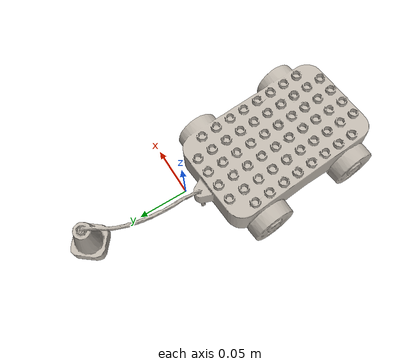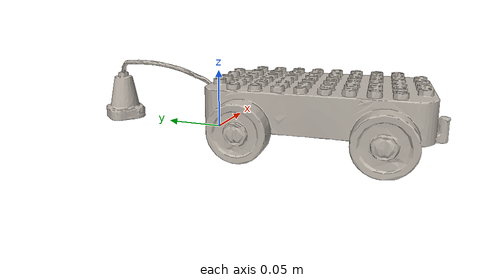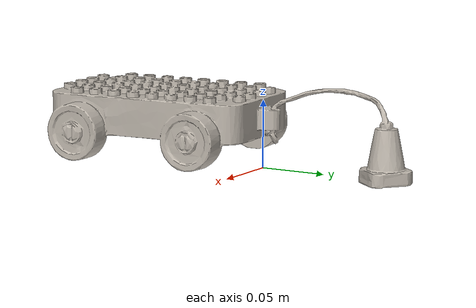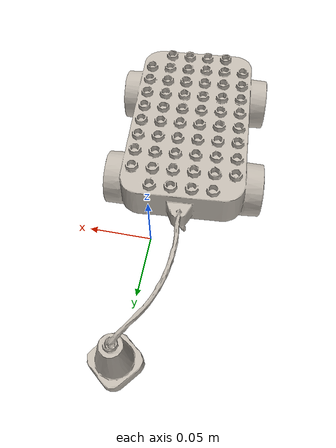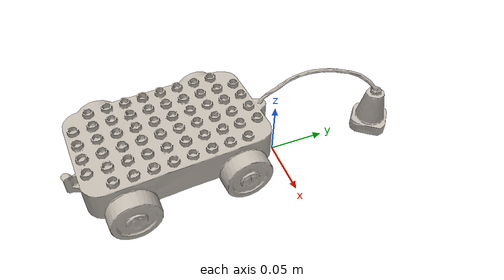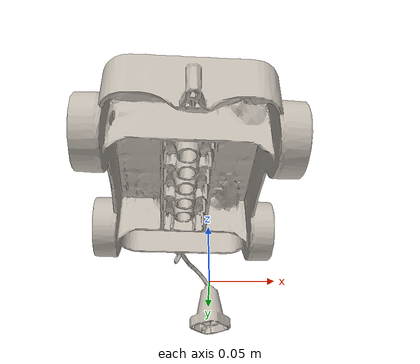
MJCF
<mujoco model="lego_g">
  <compiler angle="radian" meshdir="assets" texturedir="assets"/>
    <default>
        <default class="ycb_col">
            <geom contype="1" class="ycb_col" conaffinity="1" group="3" rgba=".4 .5 .6 1"/>
        </default>
        <default class="ycb_viz">
            <geom contype="0" class="ycb_col" conaffinity="0" type="mesh" mass="0"/>
        </default>
    </default>
  <asset>
    <texture type="2d" name="g_lego_duplo_tex" file="texture_map.png"/>
    <material name="g_lego_duplo_mat" texture="g_lego_duplo_tex" specular="0.5" shininess="0.5"/>
    <mesh file="textured.obj" name="g_lego_duplo"/>
    <mesh file="textured_collision_0.obj" name="g_lego_duplo_collision_0"/>
    <mesh file="textured_collision_1.obj" name="g_lego_duplo_collision_1"/>
    <mesh file="textured_collision_2.obj" name="g_lego_duplo_collision_2"/>
    <mesh file="textured_collision_3.obj" name="g_lego_duplo_collision_3"/>
    <mesh file="textured_collision_4.obj" name="g_lego_duplo_collision_4"/>
    <mesh file="textured_collision_5.obj" name="g_lego_duplo_collision_5"/>
    <mesh file="textured_collision_6.obj" name="g_lego_duplo_collision_6"/>
    <mesh file="textured_collision_7.obj" name="g_lego_duplo_collision_7"/>
    <mesh file="textured_collision_8.obj" name="g_lego_duplo_collision_8"/>
    <mesh file="textured_collision_9.obj" name="g_lego_duplo_collision_9"/>
    <mesh file="textured_collision_10.obj" name="g_lego_duplo_collision_10"/>
    <mesh file="textured_collision_11.obj" name="g_lego_duplo_collision_11"/>
    <mesh file="textured_collision_12.obj" name="g_lego_duplo_collision_12"/>
    <mesh file="textured_collision_13.obj" name="g_lego_duplo_collision_13"/>
    <mesh file="textured_collision_14.obj" name="g_lego_duplo_collision_14"/>
    <mesh file="textured_collision_15.obj" name="g_lego_duplo_collision_15"/>
    <mesh file="textured_collision_16.obj" name="g_lego_duplo_collision_16"/>
    <mesh file="textured_collision_17.obj" name="g_lego_duplo_collision_17"/>
    <mesh file="textured_collision_18.obj" name="g_lego_duplo_collision_18"/>
    <mesh file="textured_collision_19.obj" name="g_lego_duplo_collision_19"/>
    <mesh file="textured_collision_20.obj" name="g_lego_duplo_collision_20"/>
    <mesh file="textured_collision_21.obj" name="g_lego_duplo_collision_21"/>
    <mesh file="textured_collision_22.obj" name="g_lego_duplo_collision_22"/>
    <mesh file="textured_collision_23.obj" name="g_lego_duplo_collision_23"/>
    <mesh file="textured_collision_24.obj" name="g_lego_duplo_collision_24"/>
    <mesh file="textured_collision_25.obj" name="g_lego_duplo_collision_25"/>
    <mesh file="textured_collision_26.obj" name="g_lego_duplo_collision_26"/>
    <mesh file="textured_collision_27.obj" name="g_lego_duplo_collision_27"/>
    <mesh file="textured_collision_28.obj" name="g_lego_duplo_collision_28"/>
    <mesh file="textured_collision_29.obj" name="g_lego_duplo_collision_29"/>
    <mesh file="textured_collision_30.obj" name="g_lego_duplo_collision_30"/>
    <mesh file="textured_collision_31.obj" name="g_lego_duplo_collision_31"/>
    <mesh file="textured_collision_32.obj" name="g_lego_duplo_collision_32"/>
    <mesh file="textured_collision_33.obj" name="g_lego_duplo_collision_33"/>
    <mesh file="textured_collision_34.obj" name="g_lego_duplo_collision_34"/>
    <mesh file="textured_collision_35.obj" name="g_lego_duplo_collision_35"/>
    <mesh file="textured_collision_36.obj" name="g_lego_duplo_collision_36"/>
    <mesh file="textured_collision_37.obj" name="g_lego_duplo_collision_37"/>
    <mesh file="textured_collision_38.obj" name="g_lego_duplo_collision_38"/>
    <mesh file="textured_collision_39.obj" name="g_lego_duplo_collision_39"/>
    <mesh file="textured_collision_40.obj" name="g_lego_duplo_collision_40"/>
    <mesh file="textured_collision_41.obj" name="g_lego_duplo_collision_41"/>
    <mesh file="textured_collision_42.obj" name="g_lego_duplo_collision_42"/>
    <mesh file="textured_collision_43.obj" name="g_lego_duplo_collision_43"/>
    <mesh file="textured_collision_44.obj" name="g_lego_duplo_collision_44"/>
    <mesh file="textured_collision_45.obj" name="g_lego_duplo_collision_45"/>
    <mesh file="textured_collision_46.obj" name="g_lego_duplo_collision_46"/>
    <mesh file="textured_collision_47.obj" name="g_lego_duplo_collision_47"/>
    <mesh file="textured_collision_48.obj" name="g_lego_duplo_collision_48"/>
    <mesh file="textured_collision_49.obj" name="g_lego_duplo_collision_49"/>
    <mesh file="textured_collision_50.obj" name="g_lego_duplo_collision_50"/>
    <mesh file="textured_collision_51.obj" name="g_lego_duplo_collision_51"/>
    <mesh file="textured_collision_52.obj" name="g_lego_duplo_collision_52"/>
    <mesh file="textured_collision_53.obj" name="g_lego_duplo_collision_53"/>
    <mesh file="textured_collision_54.obj" name="g_lego_duplo_collision_54"/>
    <mesh file="textured_collision_55.obj" name="g_lego_duplo_collision_55"/>
    <mesh file="textured_collision_56.obj" name="g_lego_duplo_collision_56"/>
    <mesh file="textured_collision_57.obj" name="g_lego_duplo_collision_57"/>
    <mesh file="textured_collision_58.obj" name="g_lego_duplo_collision_58"/>
    <mesh file="textured_collision_59.obj" name="g_lego_duplo_collision_59"/>
    <mesh file="textured_collision_60.obj" name="g_lego_duplo_collision_60"/>
    <mesh file="textured_collision_61.obj" name="g_lego_duplo_collision_61"/>
    <mesh file="textured_collision_62.obj" name="g_lego_duplo_collision_62"/>
    <mesh file="textured_collision_63.obj" name="g_lego_duplo_collision_63"/>
    <mesh file="textured_collision_64.obj" name="g_lego_duplo_collision_64"/>
    <mesh file="textured_collision_65.obj" name="g_lego_duplo_collision_65"/>
    <mesh file="textured_collision_66.obj" name="g_lego_duplo_collision_66"/>
    <mesh file="textured_collision_67.obj" name="g_lego_duplo_collision_67"/>
    <mesh file="textured_collision_68.obj" name="g_lego_duplo_collision_68"/>
    <mesh file="textured_collision_69.obj" name="g_lego_duplo_collision_69"/>
    <mesh file="textured_collision_70.obj" name="g_lego_duplo_collision_70"/>
    <mesh file="textured_collision_71.obj" name="g_lego_duplo_collision_71"/>
  </asset>
  <worldbody>
      <geom material="g_lego_duplo_mat" mesh="g_lego_duplo" class="ycb_viz"/>
      <geom mesh="g_lego_duplo_collision_0" class="ycb_col" conaffinity="1" condim="4" friction="0.1 0.1 0.1" mass="0.00521833750742012" rgba="1 1 1 1" solimp="0.99 0.99 0.01" solref=".001 0.1" type="mesh" group="3"/>
      <geom mesh="g_lego_duplo_collision_1" class="ycb_col" conaffinity="1" condim="4" friction="0.1 0.1 0.1" mass="0.0009375352006990919" rgba="1 1 1 1" solimp="0.99 0.99 0.01" solref=".001 0.1" type="mesh" group="3"/>
      <geom mesh="g_lego_duplo_collision_2" class="ycb_col" conaffinity="1" condim="4" friction="0.1 0.1 0.1" mass="0.000699405197976756" rgba="1 1 1 1" solimp="0.99 0.99 0.01" solref=".001 0.1" type="mesh" group="3"/>
      <geom mesh="g_lego_duplo_collision_3" class="ycb_col" conaffinity="1" condim="4" friction="0.1 0.1 0.1" mass="0.008243552164779008" rgba="1 1 1 1" solimp="0.99 0.99 0.01" solref=".001 0.1" type="mesh" group="3"/>
      <geom mesh="g_lego_duplo_collision_4" class="ycb_col" conaffinity="1" condim="4" friction="0.1 0.1 0.1" mass="0.0018540393711391945" rgba="1 1 1 1" solimp="0.99 0.99 0.01" solref=".001 0.1" type="mesh" group="3"/>
      <geom mesh="g_lego_duplo_collision_5" class="ycb_col" conaffinity="1" condim="4" friction="0.1 0.1 0.1" mass="0.0009685457086253561" rgba="1 1 1 1" solimp="0.99 0.99 0.01" solref=".001 0.1" type="mesh" group="3"/>
      <geom mesh="g_lego_duplo_collision_6" class="ycb_col" conaffinity="1" condim="4" friction="0.1 0.1 0.1" mass="0.007282872195301293" rgba="1 1 1 1" solimp="0.99 0.99 0.01" solref=".001 0.1" type="mesh" group="3"/>
      <geom mesh="g_lego_duplo_collision_7" class="ycb_col" conaffinity="1" condim="4" friction="0.1 0.1 0.1" mass="0.0007851507888515668" rgba="1 1 1 1" solimp="0.99 0.99 0.01" solref=".001 0.1" type="mesh" group="3"/>
      <geom mesh="g_lego_duplo_collision_8" class="ycb_col" conaffinity="1" condim="4" friction="0.1 0.1 0.1" mass="0.0006862619147950573" rgba="1 1 1 1" solimp="0.99 0.99 0.01" solref=".001 0.1" type="mesh" group="3"/>
      <geom mesh="g_lego_duplo_collision_9" class="ycb_col" conaffinity="1" condim="4" friction="0.1 0.1 0.1" mass="0.0005360587774640224" rgba="1 1 1 1" solimp="0.99 0.99 0.01" solref=".001 0.1" type="mesh" group="3"/>
      <geom mesh="g_lego_duplo_collision_10" class="ycb_col" conaffinity="1" condim="4" friction="0.1 0.1 0.1" mass="0.004555390287208251" rgba="1 1 1 1" solimp="0.99 0.99 0.01" solref=".001 0.1" type="mesh" group="3"/>
      <geom mesh="g_lego_duplo_collision_11" class="ycb_col" conaffinity="1" condim="4" friction="0.1 0.1 0.1" mass="0.00270186799365822" rgba="1 1 1 1" solimp="0.99 0.99 0.01" solref=".001 0.1" type="mesh" group="3"/>
      <geom mesh="g_lego_duplo_collision_12" class="ycb_col" conaffinity="1" condim="4" friction="0.1 0.1 0.1" mass="0.0018539626974991908" rgba="1 1 1 1" solimp="0.99 0.99 0.01" solref=".001 0.1" type="mesh" group="3"/>
      <geom mesh="g_lego_duplo_collision_13" class="ycb_col" conaffinity="1" condim="4" friction="0.1 0.1 0.1" mass="0.0016028530091798203" rgba="1 1 1 1" solimp="0.99 0.99 0.01" solref=".001 0.1" type="mesh" group="3"/>
      <geom mesh="g_lego_duplo_collision_14" class="ycb_col" conaffinity="1" condim="4" friction="0.1 0.1 0.1" mass="0.008157516131139596" rgba="1 1 1 1" solimp="0.99 0.99 0.01" solref=".001 0.1" type="mesh" group="3"/>
      <geom mesh="g_lego_duplo_collision_15" class="ycb_col" conaffinity="1" condim="4" friction="0.1 0.1 0.1" mass="0.0010955460306108897" rgba="1 1 1 1" solimp="0.99 0.99 0.01" solref=".001 0.1" type="mesh" group="3"/>
      <geom mesh="g_lego_duplo_collision_16" class="ycb_col" conaffinity="1" condim="4" friction="0.1 0.1 0.1" mass="0.000632164854174641" rgba="1 1 1 1" solimp="0.99 0.99 0.01" solref=".001 0.1" type="mesh" group="3"/>
      <geom mesh="g_lego_duplo_collision_17" class="ycb_col" conaffinity="1" condim="4" friction="0.1 0.1 0.1" mass="0.00075618556883775" rgba="1 1 1 1" solimp="0.99 0.99 0.01" solref=".001 0.1" type="mesh" group="3"/>
      <geom mesh="g_lego_duplo_collision_18" class="ycb_col" conaffinity="1" condim="4" friction="0.1 0.1 0.1" mass="0.007097953264630595" rgba="1 1 1 1" solimp="0.99 0.99 0.01" solref=".001 0.1" type="mesh" group="3"/>
      <geom mesh="g_lego_duplo_collision_19" class="ycb_col" conaffinity="1" condim="4" friction="0.1 0.1 0.1" mass="0.0016085298771470384" rgba="1 1 1 1" solimp="0.99 0.99 0.01" solref=".001 0.1" type="mesh" group="3"/>
      <geom mesh="g_lego_duplo_collision_20" class="ycb_col" conaffinity="1" condim="4" friction="0.1 0.1 0.1" mass="0.003767573628596291" rgba="1 1 1 1" solimp="0.99 0.99 0.01" solref=".001 0.1" type="mesh" group="3"/>
      <geom mesh="g_lego_duplo_collision_21" class="ycb_col" conaffinity="1" condim="4" friction="0.1 0.1 0.1" mass="0.0013831503995051955" rgba="1 1 1 1" solimp="0.99 0.99 0.01" solref=".001 0.1" type="mesh" group="3"/>
      <geom mesh="g_lego_duplo_collision_22" class="ycb_col" conaffinity="1" condim="4" friction="0.1 0.1 0.1" mass="0.00624596372425929" rgba="1 1 1 1" solimp="0.99 0.99 0.01" solref=".001 0.1" type="mesh" group="3"/>
      <geom mesh="g_lego_duplo_collision_23" class="ycb_col" conaffinity="1" condim="4" friction="0.1 0.1 0.1" mass="0.0011159905458046433" rgba="1 1 1 1" solimp="0.99 0.99 0.01" solref=".001 0.1" type="mesh" group="3"/>
      <geom mesh="g_lego_duplo_collision_24" class="ycb_col" conaffinity="1" condim="4" friction="0.1 0.1 0.1" mass="0.0016869202670034863" rgba="1 1 1 1" solimp="0.99 0.99 0.01" solref=".001 0.1" type="mesh" group="3"/>
      <geom mesh="g_lego_duplo_collision_25" class="ycb_col" conaffinity="1" condim="4" friction="0.1 0.1 0.1" mass="0.0020219511517902797" rgba="1 1 1 1" solimp="0.99 0.99 0.01" solref=".001 0.1" type="mesh" group="3"/>
      <geom mesh="g_lego_duplo_collision_26" class="ycb_col" conaffinity="1" condim="4" friction="0.1 0.1 0.1" mass="0.0010605526839334522" rgba="1 1 1 1" solimp="0.99 0.99 0.01" solref=".001 0.1" type="mesh" group="3"/>
      <geom mesh="g_lego_duplo_collision_27" class="ycb_col" conaffinity="1" condim="4" friction="0.1 0.1 0.1" mass="0.0009152955411945063" rgba="1 1 1 1" solimp="0.99 0.99 0.01" solref=".001 0.1" type="mesh" group="3"/>
      <geom mesh="g_lego_duplo_collision_28" class="ycb_col" conaffinity="1" condim="4" friction="0.1 0.1 0.1" mass="0.0027126506489824963" rgba="1 1 1 1" solimp="0.99 0.99 0.01" solref=".001 0.1" type="mesh" group="3"/>
      <geom mesh="g_lego_duplo_collision_29" class="ycb_col" conaffinity="1" condim="4" friction="0.1 0.1 0.1" mass="0.0011825650066435674" rgba="1 1 1 1" solimp="0.99 0.99 0.01" solref=".001 0.1" type="mesh" group="3"/>
      <geom mesh="g_lego_duplo_collision_30" class="ycb_col" conaffinity="1" condim="4" friction="0.1 0.1 0.1" mass="0.0006325917901408804" rgba="1 1 1 1" solimp="0.99 0.99 0.01" solref=".001 0.1" type="mesh" group="3"/>
      <geom mesh="g_lego_duplo_collision_31" class="ycb_col" conaffinity="1" condim="4" friction="0.1 0.1 0.1" mass="0.00138925961563008" rgba="1 1 1 1" solimp="0.99 0.99 0.01" solref=".001 0.1" type="mesh" group="3"/>
      <geom mesh="g_lego_duplo_collision_32" class="ycb_col" conaffinity="1" condim="4" friction="0.1 0.1 0.1" mass="0.0005708039523500844" rgba="1 1 1 1" solimp="0.99 0.99 0.01" solref=".001 0.1" type="mesh" group="3"/>
      <geom mesh="g_lego_duplo_collision_33" class="ycb_col" conaffinity="1" condim="4" friction="0.1 0.1 0.1" mass="0.0013458800977638242" rgba="1 1 1 1" solimp="0.99 0.99 0.01" solref=".001 0.1" type="mesh" group="3"/>
      <geom mesh="g_lego_duplo_collision_34" class="ycb_col" conaffinity="1" condim="4" friction="0.1 0.1 0.1" mass="0.0011426052408558397" rgba="1 1 1 1" solimp="0.99 0.99 0.01" solref=".001 0.1" type="mesh" group="3"/>
      <geom mesh="g_lego_duplo_collision_35" class="ycb_col" conaffinity="1" condim="4" friction="0.1 0.1 0.1" mass="0.0007707540241974438" rgba="1 1 1 1" solimp="0.99 0.99 0.01" solref=".001 0.1" type="mesh" group="3"/>
      <geom mesh="g_lego_duplo_collision_36" class="ycb_col" conaffinity="1" condim="4" friction="0.1 0.1 0.1" mass="0.0023788491069076764" rgba="1 1 1 1" solimp="0.99 0.99 0.01" solref=".001 0.1" type="mesh" group="3"/>
      <geom mesh="g_lego_duplo_collision_37" class="ycb_col" conaffinity="1" condim="4" friction="0.1 0.1 0.1" mass="0.000918189295438843" rgba="1 1 1 1" solimp="0.99 0.99 0.01" solref=".001 0.1" type="mesh" group="3"/>
      <geom mesh="g_lego_duplo_collision_38" class="ycb_col" conaffinity="1" condim="4" friction="0.1 0.1 0.1" mass="0.0005447477311831223" rgba="1 1 1 1" solimp="0.99 0.99 0.01" solref=".001 0.1" type="mesh" group="3"/>
      <geom mesh="g_lego_duplo_collision_39" class="ycb_col" conaffinity="1" condim="4" friction="0.1 0.1 0.1" mass="0.0034238254003980655" rgba="1 1 1 1" solimp="0.99 0.99 0.01" solref=".001 0.1" type="mesh" group="3"/>
      <geom mesh="g_lego_duplo_collision_40" class="ycb_col" conaffinity="1" condim="4" friction="0.1 0.1 0.1" mass="0.0013698026754311158" rgba="1 1 1 1" solimp="0.99 0.99 0.01" solref=".001 0.1" type="mesh" group="3"/>
      <geom mesh="g_lego_duplo_collision_41" class="ycb_col" conaffinity="1" condim="4" friction="0.1 0.1 0.1" mass="0.005584238194161249" rgba="1 1 1 1" solimp="0.99 0.99 0.01" solref=".001 0.1" type="mesh" group="3"/>
      <geom mesh="g_lego_duplo_collision_42" class="ycb_col" conaffinity="1" condim="4" friction="0.1 0.1 0.1" mass="0.008116050649013083" rgba="1 1 1 1" solimp="0.99 0.99 0.01" solref=".001 0.1" type="mesh" group="3"/>
      <geom mesh="g_lego_duplo_collision_43" class="ycb_col" conaffinity="1" condim="4" friction="0.1 0.1 0.1" mass="0.0020909215525835544" rgba="1 1 1 1" solimp="0.99 0.99 0.01" solref=".001 0.1" type="mesh" group="3"/>
      <geom mesh="g_lego_duplo_collision_44" class="ycb_col" conaffinity="1" condim="4" friction="0.1 0.1 0.1" mass="0.0026213750419757085" rgba="1 1 1 1" solimp="0.99 0.99 0.01" solref=".001 0.1" type="mesh" group="3"/>
      <geom mesh="g_lego_duplo_collision_45" class="ycb_col" conaffinity="1" condim="4" friction="0.1 0.1 0.1" mass="0.0009819953618734134" rgba="1 1 1 1" solimp="0.99 0.99 0.01" solref=".001 0.1" type="mesh" group="3"/>
      <geom mesh="g_lego_duplo_collision_46" class="ycb_col" conaffinity="1" condim="4" friction="0.1 0.1 0.1" mass="0.0015659280572543914" rgba="1 1 1 1" solimp="0.99 0.99 0.01" solref=".001 0.1" type="mesh" group="3"/>
      <geom mesh="g_lego_duplo_collision_47" class="ycb_col" conaffinity="1" condim="4" friction="0.1 0.1 0.1" mass="0.0011044341601888202" rgba="1 1 1 1" solimp="0.99 0.99 0.01" solref=".001 0.1" type="mesh" group="3"/>
      <geom mesh="g_lego_duplo_collision_48" class="ycb_col" conaffinity="1" condim="4" friction="0.1 0.1 0.1" mass="0.001989723359520314" rgba="1 1 1 1" solimp="0.99 0.99 0.01" solref=".001 0.1" type="mesh" group="3"/>
      <geom mesh="g_lego_duplo_collision_49" class="ycb_col" conaffinity="1" condim="4" friction="0.1 0.1 0.1" mass="0.003249241085197724" rgba="1 1 1 1" solimp="0.99 0.99 0.01" solref=".001 0.1" type="mesh" group="3"/>
      <geom mesh="g_lego_duplo_collision_50" class="ycb_col" conaffinity="1" condim="4" friction="0.1 0.1 0.1" mass="0.006470977628042242" rgba="1 1 1 1" solimp="0.99 0.99 0.01" solref=".001 0.1" type="mesh" group="3"/>
      <geom mesh="g_lego_duplo_collision_51" class="ycb_col" conaffinity="1" condim="4" friction="0.1 0.1 0.1" mass="0.002743355573444705" rgba="1 1 1 1" solimp="0.99 0.99 0.01" solref=".001 0.1" type="mesh" group="3"/>
      <geom mesh="g_lego_duplo_collision_52" class="ycb_col" conaffinity="1" condim="4" friction="0.1 0.1 0.1" mass="0.0031411493202648283" rgba="1 1 1 1" solimp="0.99 0.99 0.01" solref=".001 0.1" type="mesh" group="3"/>
      <geom mesh="g_lego_duplo_collision_53" class="ycb_col" conaffinity="1" condim="4" friction="0.1 0.1 0.1" mass="0.0010778709666591875" rgba="1 1 1 1" solimp="0.99 0.99 0.01" solref=".001 0.1" type="mesh" group="3"/>
      <geom mesh="g_lego_duplo_collision_54" class="ycb_col" conaffinity="1" condim="4" friction="0.1 0.1 0.1" mass="0.0006945135158547695" rgba="1 1 1 1" solimp="0.99 0.99 0.01" solref=".001 0.1" type="mesh" group="3"/>
      <geom mesh="g_lego_duplo_collision_55" class="ycb_col" conaffinity="1" condim="4" friction="0.1 0.1 0.1" mass="0.0006518536041715633" rgba="1 1 1 1" solimp="0.99 0.99 0.01" solref=".001 0.1" type="mesh" group="3"/>
      <geom mesh="g_lego_duplo_collision_56" class="ycb_col" conaffinity="1" condim="4" friction="0.1 0.1 0.1" mass="0.001996113141883785" rgba="1 1 1 1" solimp="0.99 0.99 0.01" solref=".001 0.1" type="mesh" group="3"/>
      <geom mesh="g_lego_duplo_collision_57" class="ycb_col" conaffinity="1" condim="4" friction="0.1 0.1 0.1" mass="0.0038595003525175382" rgba="1 1 1 1" solimp="0.99 0.99 0.01" solref=".001 0.1" type="mesh" group="3"/>
      <geom mesh="g_lego_duplo_collision_58" class="ycb_col" conaffinity="1" condim="4" friction="0.1 0.1 0.1" mass="0.00482821838136679" rgba="1 1 1 1" solimp="0.99 0.99 0.01" solref=".001 0.1" type="mesh" group="3"/>
      <geom mesh="g_lego_duplo_collision_59" class="ycb_col" conaffinity="1" condim="4" friction="0.1 0.1 0.1" mass="0.0015765935076774583" rgba="1 1 1 1" solimp="0.99 0.99 0.01" solref=".001 0.1" type="mesh" group="3"/>
      <geom mesh="g_lego_duplo_collision_60" class="ycb_col" conaffinity="1" condim="4" friction="0.1 0.1 0.1" mass="0.0012717016340769622" rgba="1 1 1 1" solimp="0.99 0.99 0.01" solref=".001 0.1" type="mesh" group="3"/>
      <geom mesh="g_lego_duplo_collision_61" class="ycb_col" conaffinity="1" condim="4" friction="0.1 0.1 0.1" mass="0.0006999825255870472" rgba="1 1 1 1" solimp="0.99 0.99 0.01" solref=".001 0.1" type="mesh" group="3"/>
      <geom mesh="g_lego_duplo_collision_62" class="ycb_col" conaffinity="1" condim="4" friction="0.1 0.1 0.1" mass="0.0009148440971907906" rgba="1 1 1 1" solimp="0.99 0.99 0.01" solref=".001 0.1" type="mesh" group="3"/>
      <geom mesh="g_lego_duplo_collision_63" class="ycb_col" conaffinity="1" condim="4" friction="0.1 0.1 0.1" mass="0.0022823361840924334" rgba="1 1 1 1" solimp="0.99 0.99 0.01" solref=".001 0.1" type="mesh" group="3"/>
      <geom mesh="g_lego_duplo_collision_64" class="ycb_col" conaffinity="1" condim="4" friction="0.1 0.1 0.1" mass="0.003278733113465399" rgba="1 1 1 1" solimp="0.99 0.99 0.01" solref=".001 0.1" type="mesh" group="3"/>
      <geom mesh="g_lego_duplo_collision_65" class="ycb_col" conaffinity="1" condim="4" friction="0.1 0.1 0.1" mass="0.002856416846142772" rgba="1 1 1 1" solimp="0.99 0.99 0.01" solref=".001 0.1" type="mesh" group="3"/>
      <geom mesh="g_lego_duplo_collision_66" class="ycb_col" conaffinity="1" condim="4" friction="0.1 0.1 0.1" mass="0.0005843873403015017" rgba="1 1 1 1" solimp="0.99 0.99 0.01" solref=".001 0.1" type="mesh" group="3"/>
      <geom mesh="g_lego_duplo_collision_67" class="ycb_col" conaffinity="1" condim="4" friction="0.1 0.1 0.1" mass="0.0008675128590511311" rgba="1 1 1 1" solimp="0.99 0.99 0.01" solref=".001 0.1" type="mesh" group="3"/>
      <geom mesh="g_lego_duplo_collision_68" class="ycb_col" conaffinity="1" condim="4" friction="0.1 0.1 0.1" mass="0.005379120039277637" rgba="1 1 1 1" solimp="0.99 0.99 0.01" solref=".001 0.1" type="mesh" group="3"/>
      <geom mesh="g_lego_duplo_collision_69" class="ycb_col" conaffinity="1" condim="4" friction="0.1 0.1 0.1" mass="0.0013613038275633888" rgba="1 1 1 1" solimp="0.99 0.99 0.01" solref=".001 0.1" type="mesh" group="3"/>
      <geom mesh="g_lego_duplo_collision_70" class="ycb_col" conaffinity="1" condim="4" friction="0.1 0.1 0.1" mass="0.0005762580158257471" rgba="1 1 1 1" solimp="0.99 0.99 0.01" solref=".001 0.1" type="mesh" group="3"/>
      <geom mesh="g_lego_duplo_collision_71" class="ycb_col" conaffinity="1" condim="4" friction="0.1 0.1 0.1" mass="0.0007296989946264186" rgba="1 1 1 1" solimp="0.99 0.99 0.01" solref=".001 0.1" type="mesh" group="3"/>
  </worldbody>
</mujoco>
